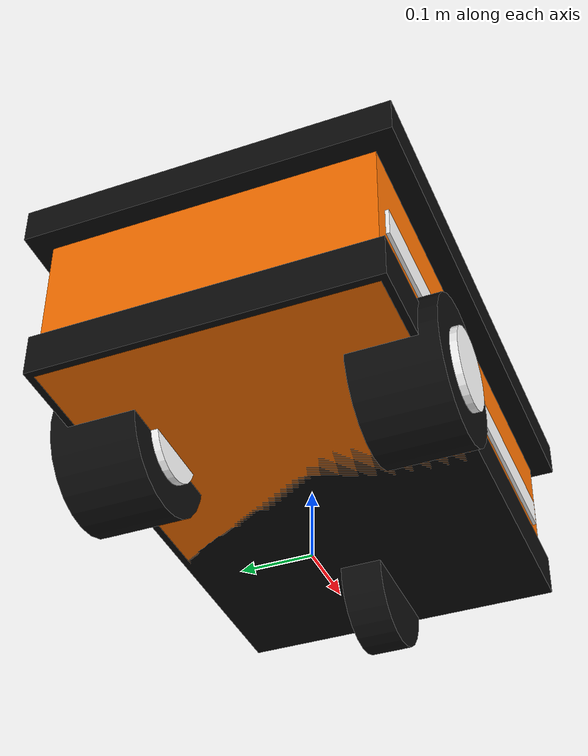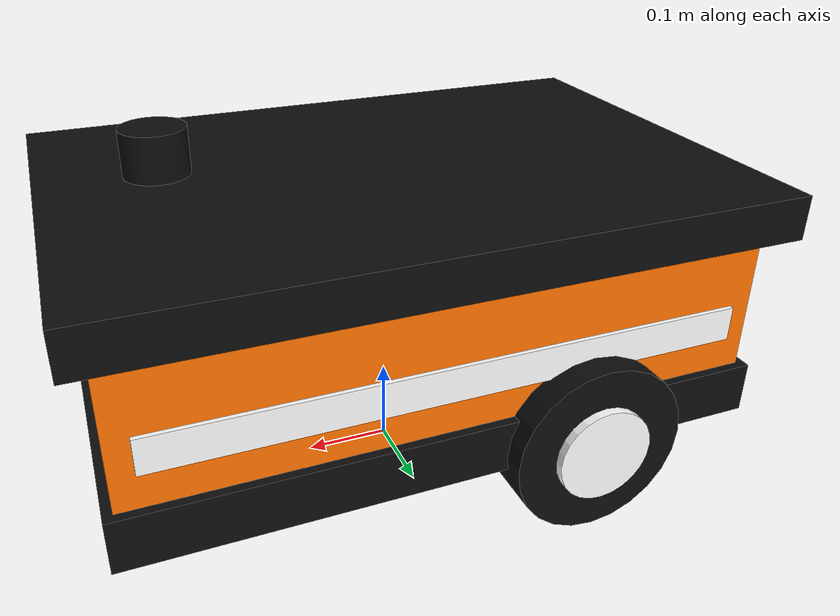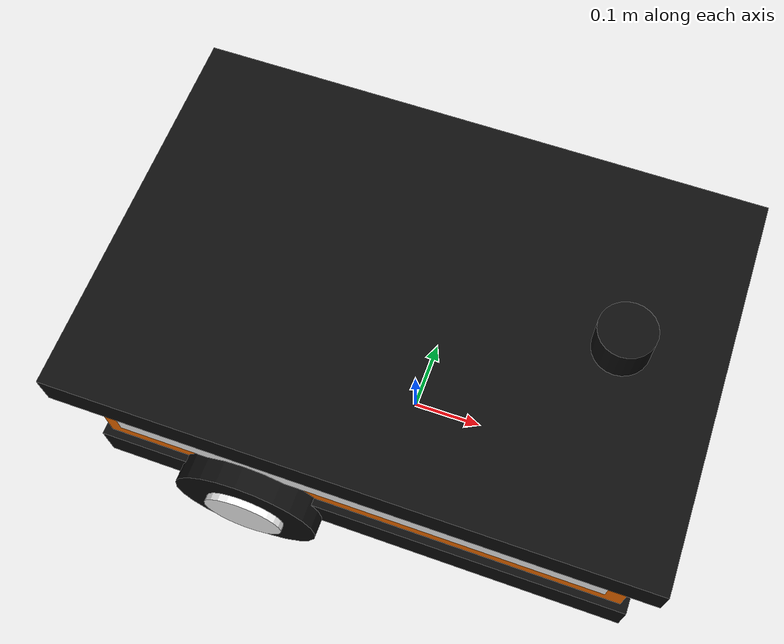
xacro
<?xml version="1.0"?>
<robot name="robo_haul" xmlns:xacro="http://www.ros.org/wiki/xacro">

  <!-- ================= Parameters ================= -->
  <xacro:property name="base_length" value="0.70"/>
  <xacro:property name="base_width"  value="0.45"/>
  <xacro:property name="base_height" value="0.22"/>

  <xacro:property name="wheel_radius" value="0.10"/>
  <xacro:property name="wheel_width"  value="0.12"/>
  <xacro:property name="wheel_sep"    value="0.40"/>

  <!-- ================= Materials ================= -->
  <material name="orange"><color rgba="1.0 0.45 0.0 1"/></material>
  <material name="white"><color rgba="1.0 1.0 1.0 1"/></material>
  <material name="black"><color rgba="0.05 0.05 0.05 1"/></material>

  <link name="base_footprint"/>

  <!-- رفع base_link ليكون مركز العجلات عند z=0 -->
  <joint name="base_footprint_to_base_link" type="fixed">
    <parent link="base_footprint"/>
    <child link="base_link"/>
    <origin xyz="0 0 ${wheel_radius}" rpy="0 0 0"/>
  </joint>

  <!-- ================= Main Body ================= -->
  <link name="base_link">
    <visual>
      <geometry>
        <box size="${base_length} ${base_width} ${base_height}"/>
      </geometry>
      <material name="orange"/>
      <origin xyz="0 0 ${base_height/2.0}" rpy="0 0 0"/>
    </visual>
    <collision>
      <geometry>
        <box size="${base_length} ${base_width} ${base_height}"/>
      </geometry>
      <origin xyz="0 0 ${base_height/2.0}" rpy="0 0 0"/>
    </collision>
    <inertial>
      <origin xyz="0 0 ${base_height/2.0}" rpy="0 0 0"/>
      <mass value="12.0"/>
      <inertia ixx="0.28" ixy="0" ixz="0" iyy="0.38" iyz="0" izz="0.45"/>
    </inertial>
  </link>

  <!-- White Stripe -->
  <link name="white_stripe_link">
    <visual>
      <geometry>
        <box size="${base_length - 0.05} ${base_width + 0.01} 0.04"/>
      </geometry>
      <material name="white"/>
      <origin xyz="0 0 0" rpy="0 0 0"/>
    </visual>
    <inertial>
      <origin xyz="0 0 0" rpy="0 0 0"/>
      <mass value="0.3"/>
      <inertia ixx="0.005" ixy="0" ixz="0" iyy="0.005" iyz="0" izz="0.005"/>
    </inertial>
  </link>

  <joint name="white_stripe_joint" type="fixed">
    <parent link="base_link"/>
    <child link="white_stripe_link"/>
    <origin xyz="0 0 ${base_height/2 + 0.01}" rpy="0 0 0"/>
  </joint>

  <!-- Black Bumper -->
  <link name="bumper_link">
    <visual>
      <geometry>
        <box size="${base_length + 0.02} ${base_width + 0.02} 0.06"/>
      </geometry>
      <material name="black"/>
      <origin xyz="0 0 0" rpy="0 0 0"/>
    </visual>
    <collision>
      <geometry>
        <box size="${base_length + 0.02} ${base_width + 0.02} 0.06"/>
      </geometry>
      <origin xyz="0 0 0" rpy="0 0 0"/>
    </collision>
    <inertial>
      <origin xyz="0 0 0" rpy="0 0 0"/>
      <mass value="1.5"/>
      <inertia ixx="0.02" ixy="0" ixz="0" iyy="0.02" iyz="0" izz="0.02"/>
    </inertial>
  </link>

  <joint name="bumper_joint" type="fixed">
    <parent link="base_link"/>
    <child link="bumper_link"/>
    <origin xyz="0 0 0.03" rpy="0 0 0"/>
  </joint>

  <!-- Top Platform -->
  <link name="tray_link">
    <visual>
      <geometry>
        <box size="0.75 ${base_width + 0.06} 0.05"/>
      </geometry>
      <material name="black"/>
      <origin xyz="0 0 0" rpy="0 0 0"/>
    </visual>
    <collision>
      <geometry>
        <box size="0.75 ${base_width + 0.06} 0.05"/>
      </geometry>
      <origin xyz="0 0 0" rpy="0 0 0"/>
    </collision>
    <inertial>
      <origin xyz="0 0 0" rpy="0 0 0"/>
      <mass value="1.8"/>
      <inertia ixx="0.025" ixy="0" ixz="0" iyy="0.025" iyz="0" izz="0.025"/>
    </inertial>
  </link>

  <joint name="tray_joint" type="fixed">
    <parent link="base_link"/>
    <child link="tray_link"/>
    <origin xyz="0 0 ${base_height + 0.03}" rpy="0 0 0"/>
  </joint>

  <!-- ================= Drive Wheels ================= -->
  <link name="left_wheel_link">
    <visual>
      <geometry>
        <cylinder radius="${wheel_radius}" length="${wheel_width}"/>
      </geometry>
      <material name="black"/>
      <origin xyz="0 0 0" rpy="1.5708 0 0"/>
    </visual>
    <visual>
      <geometry>
        <cylinder radius="0.055" length="${wheel_width + 0.02}"/>
      </geometry>
      <material name="white"/>
      <origin xyz="0 0 0" rpy="1.5708 0 0"/>
    </visual>
    <collision>
      <geometry>
        <cylinder radius="${wheel_radius}" length="${wheel_width}"/>
      </geometry>
      <origin xyz="0 0 0" rpy="1.5708 0 0"/>
    </collision>
    <inertial>
      <origin xyz="0 0 0" rpy="0 0 0"/>
      <mass value="0.7"/>
      <inertia ixx="0.008" ixy="0" ixz="0" iyy="0.008" iyz="0" izz="0.008"/>
    </inertial>
  </link>

  <joint name="left_wheel_joint" type="continuous">
    <parent link="base_link"/>
    <child link="left_wheel_link"/>
    <origin xyz="-0.15 ${wheel_sep/2.0} 0.015" rpy="0 0 0"/>
    <axis xyz="0 1 0"/>
    <dynamics damping="0.1" friction="0.0"/>
  </joint>

  <link name="right_wheel_link">
    <visual>
      <geometry>
        <cylinder radius="${wheel_radius}" length="${wheel_width}"/>
      </geometry>
      <material name="black"/>
      <origin xyz="0 0 0" rpy="1.5708 0 0"/>
    </visual>
    <visual>
      <geometry>
        <cylinder radius="0.055" length="${wheel_width + 0.02}"/>
      </geometry>
      <material name="white"/>
      <origin xyz="0 0 0" rpy="1.5708 0 0"/>
    </visual>
    <collision>
      <geometry>
        <cylinder radius="${wheel_radius}" length="${wheel_width}"/>
      </geometry>
      <origin xyz="0 0 0" rpy="1.5708 0 0"/>
    </collision>
    <inertial>
      <origin xyz="0 0 0" rpy="0 0 0"/>
      <mass value="0.7"/>
      <inertia ixx="0.008" ixy="0" ixz="0" iyy="0.008" iyz="0" izz="0.008"/>
    </inertial>
  </link>

  <joint name="right_wheel_joint" type="continuous">
    <parent link="base_link"/>
    <child link="right_wheel_link"/>
    <origin xyz="-0.15 -${wheel_sep/2.0} 0.015" rpy="0 0 0"/>
    <axis xyz="0 1 0"/>
    <dynamics damping="0.1" friction="0.0"/>
  </joint>

  <!-- ================= Rear Caster ================= -->
  <link name="caster_swivel_link">
    <visual>
      <geometry>
        <cylinder radius="0.03" length="0.08"/>
      </geometry>
      <material name="black"/>
      <origin xyz="0 0 0" rpy="0 0 0"/>
    </visual>
    <collision>
      <geometry>
        <cylinder radius="0.03" length="0.08"/>
      </geometry>
      <origin xyz="0 0 0" rpy="0 0 0"/>
    </collision>
    <inertial>
      <origin xyz="0 0 0" rpy="0 0 0"/>
      <mass value="0.15"/>
      <inertia ixx="0.0008" ixy="0" ixz="0" iyy="0.0008" iyz="0" izz="0.0008"/>
    </inertial>
  </link>

  <joint name="caster_swivel_joint" type="continuous">
    <parent link="base_link"/>
    <child link="caster_swivel_link"/>
    <origin xyz="0.27 0 0.015" rpy="0 0 0"/>
    <axis xyz="0 0 1"/>
    <dynamics damping="0.3" friction="0.0"/>
  </joint>

  <link name="caster_wheel_link">
    <visual>
      <geometry>
        <cylinder radius="0.085" length="0.06"/>
      </geometry>
      <material name="black"/>
      <origin xyz="0 0 0" rpy="1.5708 0 0"/>
    </visual>
    <collision>
      <geometry>
        <cylinder radius="0.085" length="0.06"/>
      </geometry>
      <origin xyz="0 0 0" rpy="1.5708 0 0"/>
    </collision>
    <inertial>
      <origin xyz="0 0 0" rpy="0 0 0"/>
      <mass value="0.3"/>
      <inertia ixx="0.003" ixy="0" ixz="0" iyy="0.003" iyz="0" izz="0.003"/>
    </inertial>
  </link>

  <joint name="caster_wheel_joint" type="continuous">
    <parent link="caster_swivel_link"/>
    <child link="caster_wheel_link"/>
    <origin xyz="0 0 -0.015" rpy="0 0 0"/>
    <axis xyz="0 1 0"/>
    <dynamics damping="0.2" friction="0.0"/>
  </joint>

  <!-- ================= LiDAR ================= -->
  <link name="lidar_link">
    <visual>
      <geometry>
        <cylinder radius="0.035" length="0.05"/>
      </geometry>
      <material name="black"/>
    </visual>
    <collision>
      <geometry>
        <cylinder radius="0.035" length="0.05"/>
      </geometry>
    </collision>
    <inertial>
      <origin xyz="0 0 0" rpy="0 0 0"/>
      <mass value="0.15"/>
      <inertia ixx="0.0001" ixy="0" ixz="0" iyy="0.0001" iyz="0" izz="0.0001"/>
    </inertial>
  </link>

  <joint name="lidar_joint" type="fixed">
    <parent link="tray_link"/>
    <child link="lidar_link"/>
    <origin xyz="0.25 0 0.07" rpy="0 0 0"/>
  </joint>

  <!-- ================= Gazebo Settings ================= -->

  <gazebo reference="left_wheel_link">
    <mu1>1.0</mu1>
    <mu2>0.8</mu2>
    <kp>10000000.0</kp>
    <kd>1.0</kd>
    <minDepth>0.001</minDepth>
  </gazebo>

  <gazebo reference="right_wheel_link">
    <mu1>1.0</mu1>
    <mu2>0.8</mu2>
    <kp>10000000.0</kp>
    <kd>1.0</kd>
    <minDepth>0.001</minDepth>
  </gazebo>

  <gazebo reference="caster_wheel_link">
    <mu1>0.01</mu1>
    <mu2>0.01</mu2>
    <kp>1000000.0</kp>
    <kd>5.0</kd>
    <minDepth>0.001</minDepth>
  </gazebo>

  <gazebo reference="base_link">
    <mu1>0.3</mu1>
    <mu2>0.3</mu2>
    <kp>5000000.0</kp>
    <kd>10.0</kd>
    <minDepth>0.002</minDepth>
  </gazebo>

  <!-- ================= Diff Drive Plugin ================= -->
  <gazebo>
    <plugin name="diff_drive" filename="libgazebo_ros_diff_drive.so">
      <ros>
        <namespace>/</namespace>
      </ros>
      <left_joint>left_wheel_joint</left_joint>
      <right_joint>right_wheel_joint</right_joint>
      <wheel_separation>${wheel_sep}</wheel_separation>
      <wheel_diameter>${2.0 * wheel_radius}</wheel_diameter>
      <max_wheel_torque>20</max_wheel_torque>
      <max_wheel_acceleration>5.0</max_wheel_acceleration>
      <odometry_frame>odom</odometry_frame>

      <robot_base_frame>base_footprint</robot_base_frame>
      <command_topic>cmd_vel</command_topic>
      <odometry_topic>odom</odometry_topic>
      <publish_odom>true</publish_odom>
      <publish_odom_tf>true</publish_odom_tf>
      <publish_wheel_tf>false</publish_wheel_tf>
    </plugin>
  </gazebo>

  <!-- ================= LiDAR Sensor ================= -->
  <!-- ================= LiDAR Sensor ================= -->
<gazebo reference="lidar_link">
  <sensor type="ray" name="lidar">
    <pose>0 0 0 0 0 0</pose>
    <update_rate>15</update_rate>
    <visualize>true</visualize>
    <ray>
      <scan>
        <horizontal>
          <samples>720</samples>
          <resolution>1</resolution>
          <min_angle>-3.14159</min_angle>
          <max_angle>3.14159</max_angle>
        </horizontal>
      </scan>
      <range>
        <min>0.12</min>
        <max>10.0</max>
        <resolution>0.01</resolution>
      </range>
    </ray>
    <plugin name="gazebo_ros_laser" filename="libgazebo_ros_ray_sensor.so">
      <ros>
        <namespace>/</namespace>
        <remapping>~/out:=scan</remapping>
      </ros>
      <output_type>sensor_msgs/LaserScan</output_type>
      <frame_name>lidar_link</frame_name>
    </plugin>
  </sensor>
</gazebo>

</robot>
